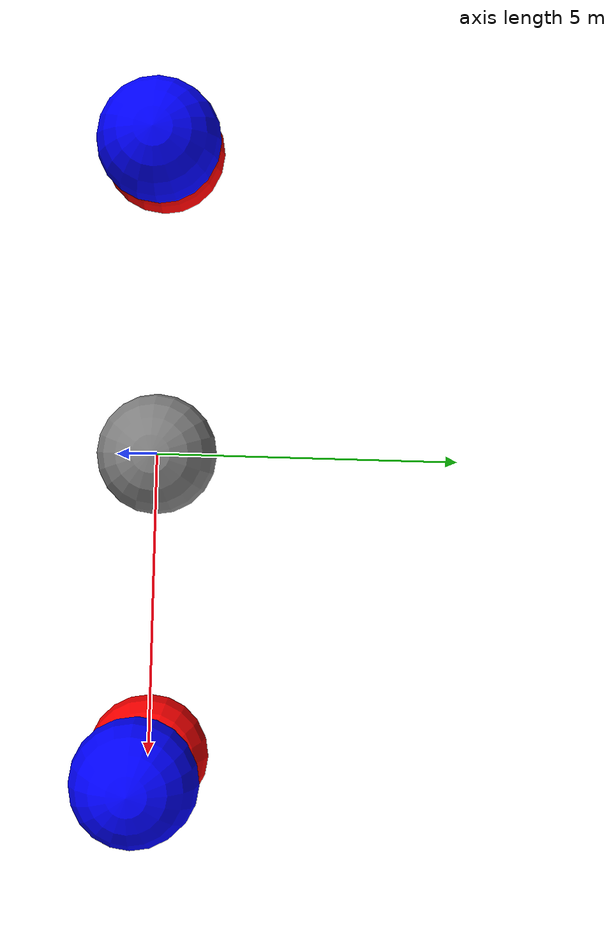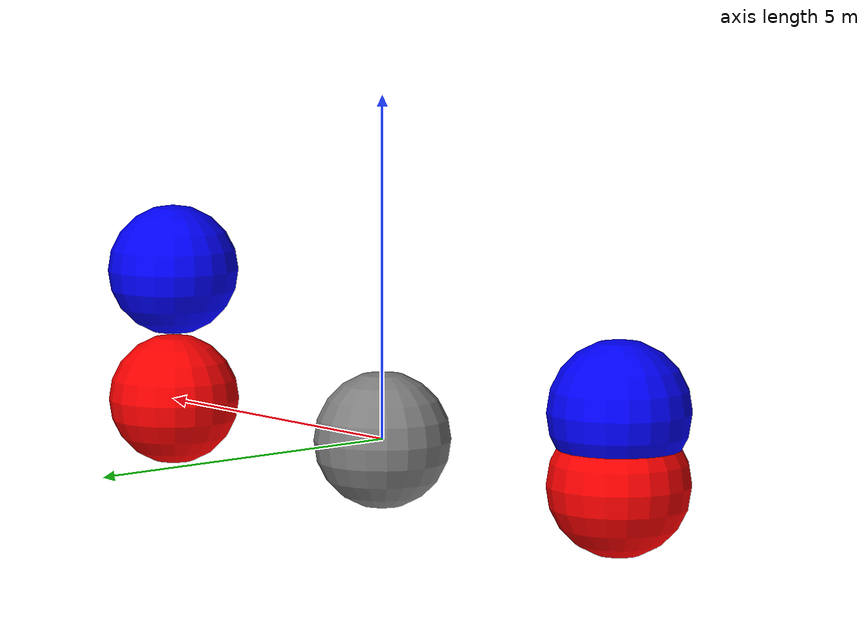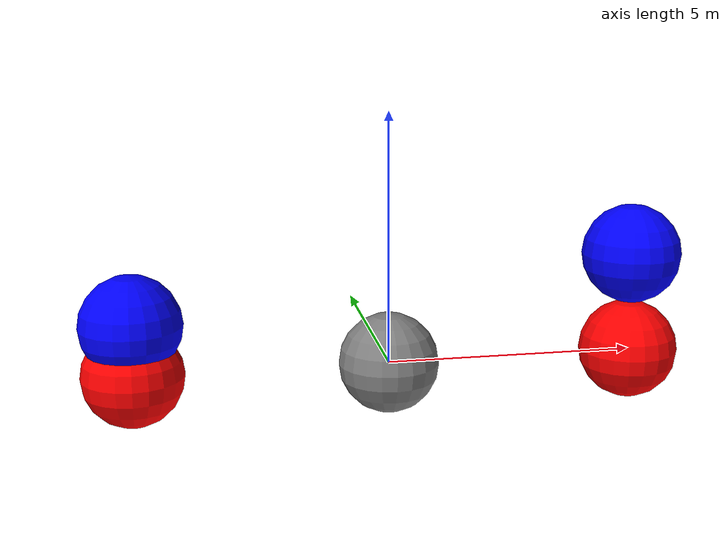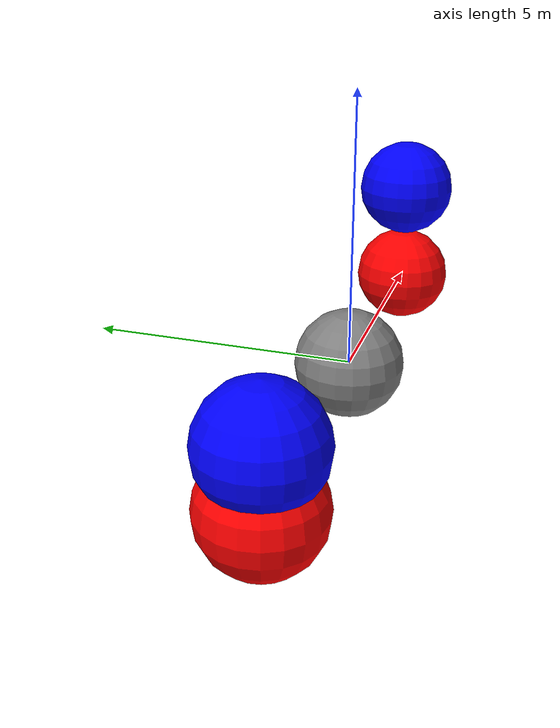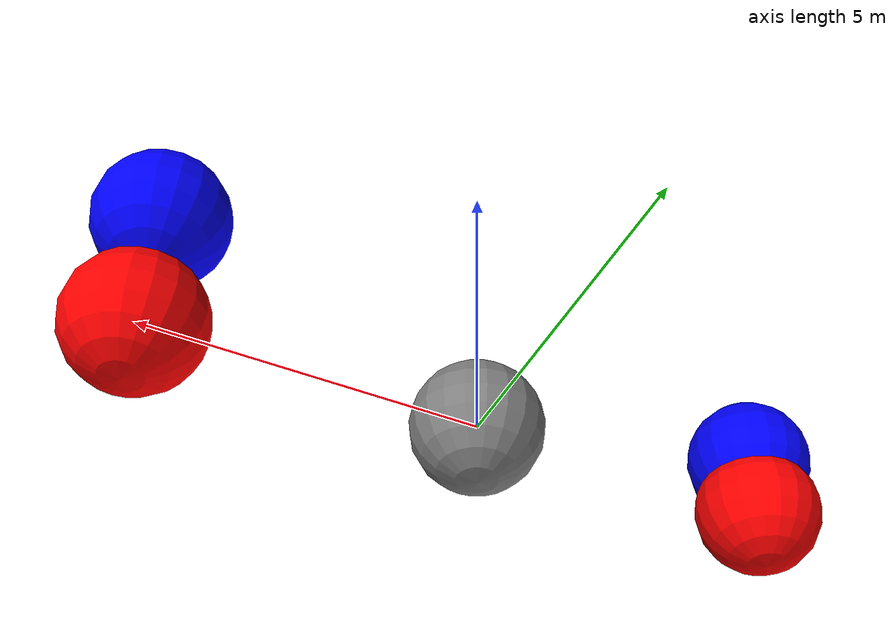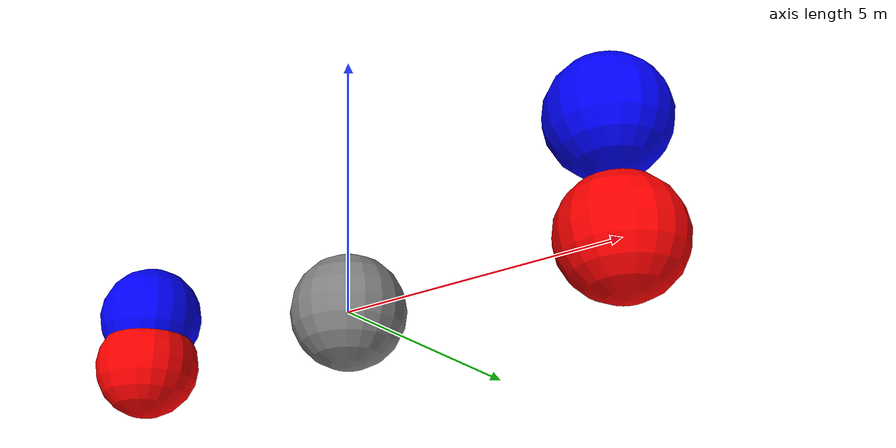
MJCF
<mujoco>
  <custom>
    <numeric name="duration" data="0.1"/>
  </custom>

  <option>
    <flag sleep="enable"/>
  </option>

  <worldbody>
    <geom size="1"/>

    <body name="mocap_static" pos="-5 0 0.01" mocap="true">
      <geom size="1" rgba="1 0 0 1"/>
      <body pos="0 0 1">
        <geom size="1" rgba="0 0 1 1"/>
      </body>
    </body>

    <body name="mocap_dynamic" pos="5 0 0.01" mocap="true">
      <geom size="1" rgba="1 0 0 1"/>
      <body pos="0 0 2">
        <joint type="slide"/>
        <geom size="1" rgba="0 0 1 1"/>
      </body>
    </body>
  </worldbody>
</mujoco>
